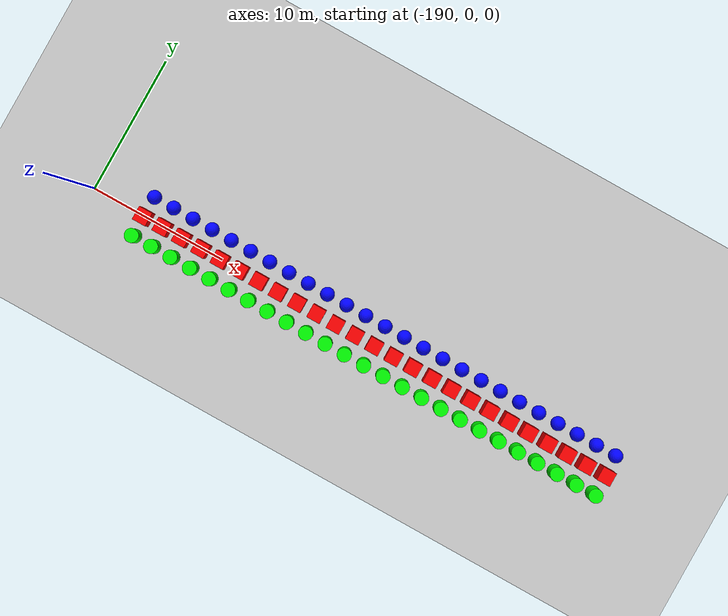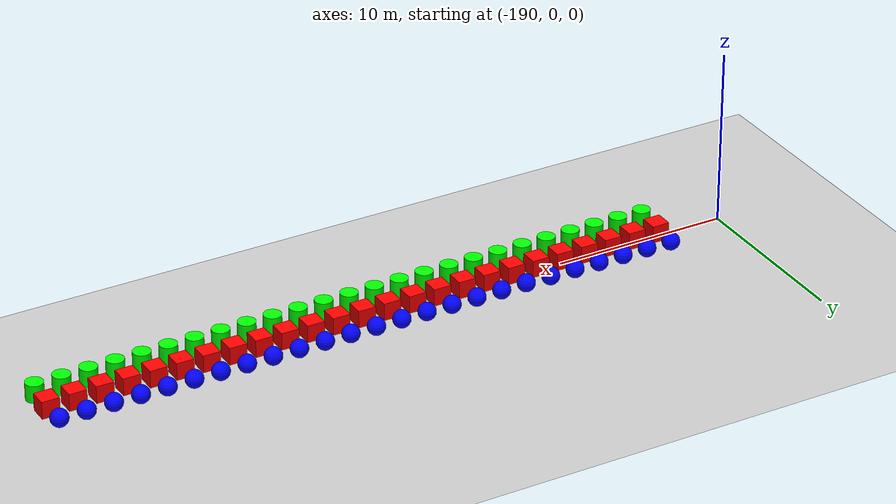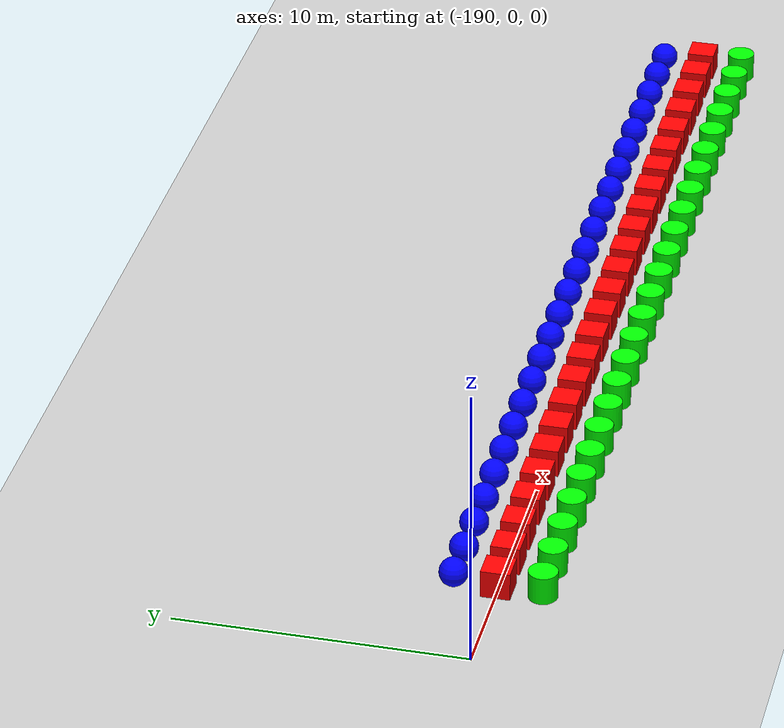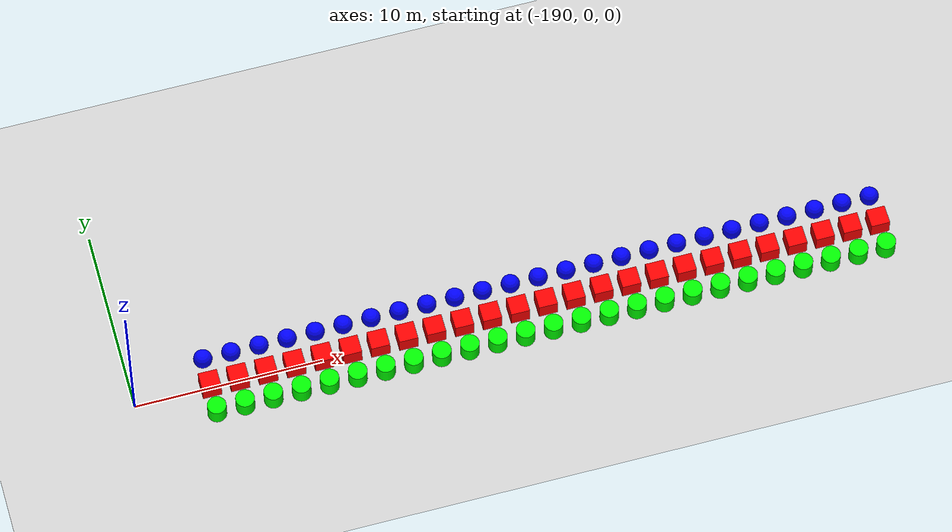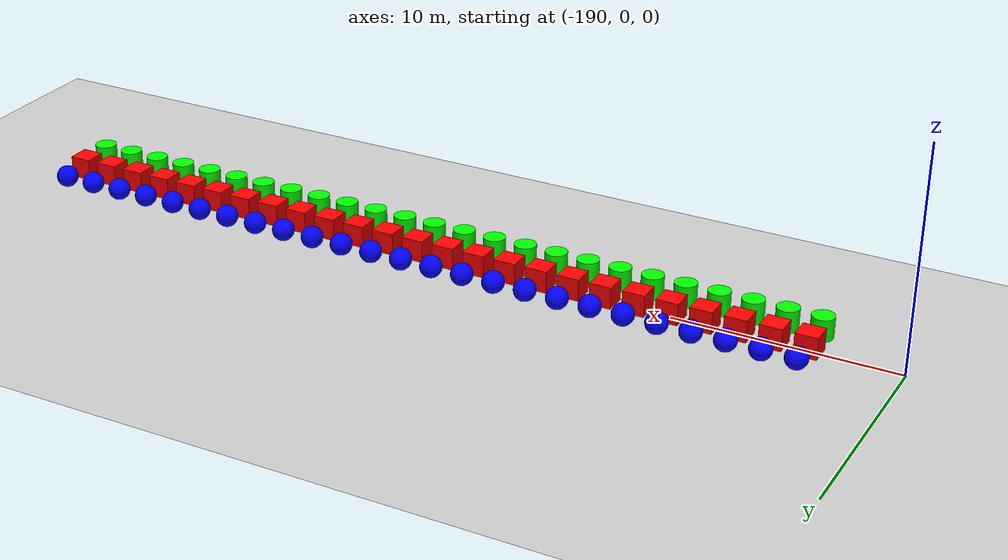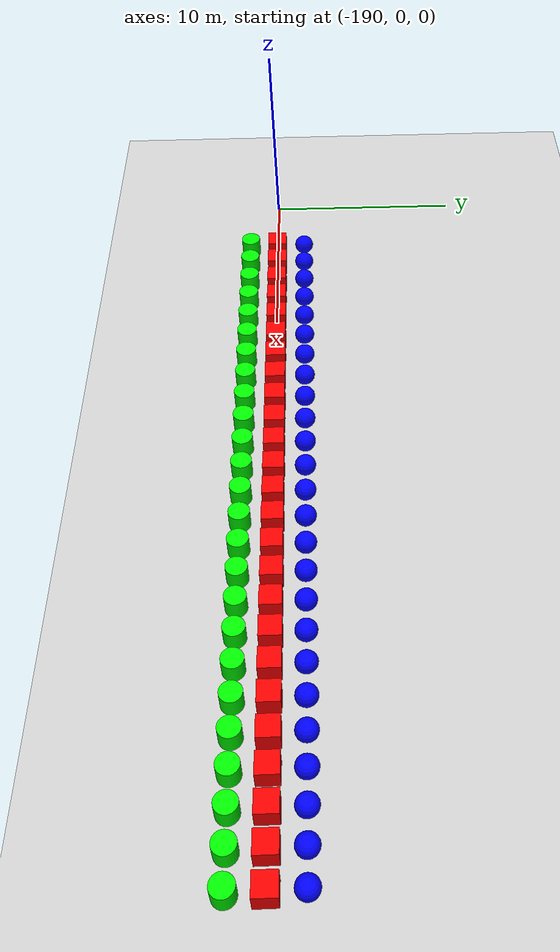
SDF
<sdf version="1.6">
 <world name="shapes">
  <model name="ground_plane">
   <static>true</static>
   <link name="link">
    <collision name="collision">
     <geometry><plane><normal>0 0 1</normal><size>100 100</size></plane></geometry>
    </collision>
    <visual name="visual">
     <geometry><plane><normal>0 0 1</normal><size>100 100</size></plane></geometry>
     <material>
      <ambient>0.8 0.8 0.8 1</ambient>
      <diffuse>0.8 0.8 0.8 1</diffuse>
      <specular>0.8 0.8 0.8 1</specular>
     </material>
    </visual>
   </link>
  </model>
  <model name="box_376">
   <static>false</static>
   <pose>-186.0 0 0.5 0 0 0</pose>
   <link name="box_link">
    <inertial>
     <inertia><ixx>1</ixx><ixy>0</ixy><ixz>0</ixz><iyy>1</iyy><iyz>0</iyz><izz>1</izz></inertia>
     <mass>1.0</mass>
    </inertial>
    <collision name="box_collision"><geometry><box><size>1 1 1</size></box></geometry></collision>
    <visual name="box_visual">
     <geometry><box><size>1 1 1</size></box></geometry>
     <material><ambient>1 0 0 1</ambient><diffuse>1 0 0 1</diffuse><specular>1 0 0 1</specular></material>
    </visual>
   </link>
  </model>
  <model name="cylinder_376">
   <static>false</static>
   <pose>-186.0 -1.5 0.5 0 0 0</pose>
   <link name="cylinder_link">
    <inertial>
     <inertia><ixx>2</ixx><ixy>0</ixy><ixz>0</ixz><iyy>2</iyy><iyz>0</iyz><izz>2</izz></inertia>
     <mass>2.0</mass>
    </inertial>
    <collision name="cylinder_collision">
     <geometry><cylinder><radius>0.5</radius><length>1.0</length></cylinder></geometry>
    </collision>
    <visual name="cylinder_visual">
     <geometry><cylinder><radius>0.5</radius><length>1.0</length></cylinder></geometry>
     <material><ambient>0 1 0 1</ambient><diffuse>0 1 0 1</diffuse><specular>0 1 0 1</specular></material>
    </visual>
   </link>
  </model>
  <model name="sphere_376">
   <static>false</static>
   <pose>-186.0 1.5 0.5 0 0 0</pose>
   <link name="sphere_link">
    <inertial>
     <inertia><ixx>3</ixx><ixy>0</ixy><ixz>0</ixz><iyy>3</iyy><iyz>0</iyz><izz>3</izz></inertia>
     <mass>3.0</mass>
    </inertial>
    <collision name="sphere_collision"><geometry><sphere><radius>0.5</radius></sphere></geometry></collision>
    <visual name="sphere_visual">
     <geometry><sphere><radius>0.5</radius></sphere></geometry>
     <material><ambient>0 0 1 1</ambient><diffuse>0 0 1 1</diffuse><specular>0 0 1 1</specular></material>
    </visual>
   </link>
  </model>
  <model name="box_377">
   <static>false</static>
   <pose>-184.5 0 0.5 0 0 0</pose>
   <link name="box_link">
    <inertial>
     <inertia><ixx>1</ixx><ixy>0</ixy><ixz>0</ixz><iyy>1</iyy><iyz>0</iyz><izz>1</izz></inertia>
     <mass>1.0</mass>
    </inertial>
    <collision name="box_collision"><geometry><box><size>1 1 1</size></box></geometry></collision>
    <visual name="box_visual">
     <geometry><box><size>1 1 1</size></box></geometry>
     <material><ambient>1 0 0 1</ambient><diffuse>1 0 0 1</diffuse><specular>1 0 0 1</specular></material>
    </visual>
   </link>
  </model>
  <model name="cylinder_377">
   <static>false</static>
   <pose>-184.5 -1.5 0.5 0 0 0</pose>
   <link name="cylinder_link">
    <inertial>
     <inertia><ixx>2</ixx><ixy>0</ixy><ixz>0</ixz><iyy>2</iyy><iyz>0</iyz><izz>2</izz></inertia>
     <mass>2.0</mass>
    </inertial>
    <collision name="cylinder_collision">
     <geometry><cylinder><radius>0.5</radius><length>1.0</length></cylinder></geometry>
    </collision>
    <visual name="cylinder_visual">
     <geometry><cylinder><radius>0.5</radius><length>1.0</length></cylinder></geometry>
     <material><ambient>0 1 0 1</ambient><diffuse>0 1 0 1</diffuse><specular>0 1 0 1</specular></material>
    </visual>
   </link>
  </model>
  <model name="sphere_377">
   <static>false</static>
   <pose>-184.5 1.5 0.5 0 0 0</pose>
   <link name="sphere_link">
    <inertial>
     <inertia><ixx>3</ixx><ixy>0</ixy><ixz>0</ixz><iyy>3</iyy><iyz>0</iyz><izz>3</izz></inertia>
     <mass>3.0</mass>
    </inertial>
    <collision name="sphere_collision"><geometry><sphere><radius>0.5</radius></sphere></geometry></collision>
    <visual name="sphere_visual">
     <geometry><sphere><radius>0.5</radius></sphere></geometry>
     <material><ambient>0 0 1 1</ambient><diffuse>0 0 1 1</diffuse><specular>0 0 1 1</specular></material>
    </visual>
   </link>
  </model>
  <model name="box_378">
   <static>false</static>
   <pose>-183.0 0 0.5 0 0 0</pose>
   <link name="box_link">
    <inertial>
     <inertia><ixx>1</ixx><ixy>0</ixy><ixz>0</ixz><iyy>1</iyy><iyz>0</iyz><izz>1</izz></inertia>
     <mass>1.0</mass>
    </inertial>
    <collision name="box_collision"><geometry><box><size>1 1 1</size></box></geometry></collision>
    <visual name="box_visual">
     <geometry><box><size>1 1 1</size></box></geometry>
     <material><ambient>1 0 0 1</ambient><diffuse>1 0 0 1</diffuse><specular>1 0 0 1</specular></material>
    </visual>
   </link>
  </model>
  <model name="cylinder_378">
   <static>false</static>
   <pose>-183.0 -1.5 0.5 0 0 0</pose>
   <link name="cylinder_link">
    <inertial>
     <inertia><ixx>2</ixx><ixy>0</ixy><ixz>0</ixz><iyy>2</iyy><iyz>0</iyz><izz>2</izz></inertia>
     <mass>2.0</mass>
    </inertial>
    <collision name="cylinder_collision">
     <geometry><cylinder><radius>0.5</radius><length>1.0</length></cylinder></geometry>
    </collision>
    <visual name="cylinder_visual">
     <geometry><cylinder><radius>0.5</radius><length>1.0</length></cylinder></geometry>
     <material><ambient>0 1 0 1</ambient><diffuse>0 1 0 1</diffuse><specular>0 1 0 1</specular></material>
    </visual>
   </link>
  </model>
  <model name="sphere_378">
   <static>false</static>
   <pose>-183.0 1.5 0.5 0 0 0</pose>
   <link name="sphere_link">
    <inertial>
     <inertia><ixx>3</ixx><ixy>0</ixy><ixz>0</ixz><iyy>3</iyy><iyz>0</iyz><izz>3</izz></inertia>
     <mass>3.0</mass>
    </inertial>
    <collision name="sphere_collision"><geometry><sphere><radius>0.5</radius></sphere></geometry></collision>
    <visual name="sphere_visual">
     <geometry><sphere><radius>0.5</radius></sphere></geometry>
     <material><ambient>0 0 1 1</ambient><diffuse>0 0 1 1</diffuse><specular>0 0 1 1</specular></material>
    </visual>
   </link>
  </model>
  <model name="box_379">
   <static>false</static>
   <pose>-181.5 0 0.5 0 0 0</pose>
   <link name="box_link">
    <inertial>
     <inertia><ixx>1</ixx><ixy>0</ixy><ixz>0</ixz><iyy>1</iyy><iyz>0</iyz><izz>1</izz></inertia>
     <mass>1.0</mass>
    </inertial>
    <collision name="box_collision"><geometry><box><size>1 1 1</size></box></geometry></collision>
    <visual name="box_visual">
     <geometry><box><size>1 1 1</size></box></geometry>
     <material><ambient>1 0 0 1</ambient><diffuse>1 0 0 1</diffuse><specular>1 0 0 1</specular></material>
    </visual>
   </link>
  </model>
  <model name="cylinder_379">
   <static>false</static>
   <pose>-181.5 -1.5 0.5 0 0 0</pose>
   <link name="cylinder_link">
    <inertial>
     <inertia><ixx>2</ixx><ixy>0</ixy><ixz>0</ixz><iyy>2</iyy><iyz>0</iyz><izz>2</izz></inertia>
     <mass>2.0</mass>
    </inertial>
    <collision name="cylinder_collision">
     <geometry><cylinder><radius>0.5</radius><length>1.0</length></cylinder></geometry>
    </collision>
    <visual name="cylinder_visual">
     <geometry><cylinder><radius>0.5</radius><length>1.0</length></cylinder></geometry>
     <material><ambient>0 1 0 1</ambient><diffuse>0 1 0 1</diffuse><specular>0 1 0 1</specular></material>
    </visual>
   </link>
  </model>
  <model name="sphere_379">
   <static>false</static>
   <pose>-181.5 1.5 0.5 0 0 0</pose>
   <link name="sphere_link">
    <inertial>
     <inertia><ixx>3</ixx><ixy>0</ixy><ixz>0</ixz><iyy>3</iyy><iyz>0</iyz><izz>3</izz></inertia>
     <mass>3.0</mass>
    </inertial>
    <collision name="sphere_collision"><geometry><sphere><radius>0.5</radius></sphere></geometry></collision>
    <visual name="sphere_visual">
     <geometry><sphere><radius>0.5</radius></sphere></geometry>
     <material><ambient>0 0 1 1</ambient><diffuse>0 0 1 1</diffuse><specular>0 0 1 1</specular></material>
    </visual>
   </link>
  </model>
  <model name="box_380">
   <static>false</static>
   <pose>-180.0 0 0.5 0 0 0</pose>
   <link name="box_link">
    <inertial>
     <inertia><ixx>1</ixx><ixy>0</ixy><ixz>0</ixz><iyy>1</iyy><iyz>0</iyz><izz>1</izz></inertia>
     <mass>1.0</mass>
    </inertial>
    <collision name="box_collision"><geometry><box><size>1 1 1</size></box></geometry></collision>
    <visual name="box_visual">
     <geometry><box><size>1 1 1</size></box></geometry>
     <material><ambient>1 0 0 1</ambient><diffuse>1 0 0 1</diffuse><specular>1 0 0 1</specular></material>
    </visual>
   </link>
  </model>
  <model name="cylinder_380">
   <static>false</static>
   <pose>-180.0 -1.5 0.5 0 0 0</pose>
   <link name="cylinder_link">
    <inertial>
     <inertia><ixx>2</ixx><ixy>0</ixy><ixz>0</ixz><iyy>2</iyy><iyz>0</iyz><izz>2</izz></inertia>
     <mass>2.0</mass>
    </inertial>
    <collision name="cylinder_collision">
     <geometry><cylinder><radius>0.5</radius><length>1.0</length></cylinder></geometry>
    </collision>
    <visual name="cylinder_visual">
     <geometry><cylinder><radius>0.5</radius><length>1.0</length></cylinder></geometry>
     <material><ambient>0 1 0 1</ambient><diffuse>0 1 0 1</diffuse><specular>0 1 0 1</specular></material>
    </visual>
   </link>
  </model>
  <model name="sphere_380">
   <static>false</static>
   <pose>-180.0 1.5 0.5 0 0 0</pose>
   <link name="sphere_link">
    <inertial>
     <inertia><ixx>3</ixx><ixy>0</ixy><ixz>0</ixz><iyy>3</iyy><iyz>0</iyz><izz>3</izz></inertia>
     <mass>3.0</mass>
    </inertial>
    <collision name="sphere_collision"><geometry><sphere><radius>0.5</radius></sphere></geometry></collision>
    <visual name="sphere_visual">
     <geometry><sphere><radius>0.5</radius></sphere></geometry>
     <material><ambient>0 0 1 1</ambient><diffuse>0 0 1 1</diffuse><specular>0 0 1 1</specular></material>
    </visual>
   </link>
  </model>
  <model name="box_381">
   <static>false</static>
   <pose>-178.5 0 0.5 0 0 0</pose>
   <link name="box_link">
    <inertial>
     <inertia><ixx>1</ixx><ixy>0</ixy><ixz>0</ixz><iyy>1</iyy><iyz>0</iyz><izz>1</izz></inertia>
     <mass>1.0</mass>
    </inertial>
    <collision name="box_collision"><geometry><box><size>1 1 1</size></box></geometry></collision>
    <visual name="box_visual">
     <geometry><box><size>1 1 1</size></box></geometry>
     <material><ambient>1 0 0 1</ambient><diffuse>1 0 0 1</diffuse><specular>1 0 0 1</specular></material>
    </visual>
   </link>
  </model>
  <model name="cylinder_381">
   <static>false</static>
   <pose>-178.5 -1.5 0.5 0 0 0</pose>
   <link name="cylinder_link">
    <inertial>
     <inertia><ixx>2</ixx><ixy>0</ixy><ixz>0</ixz><iyy>2</iyy><iyz>0</iyz><izz>2</izz></inertia>
     <mass>2.0</mass>
    </inertial>
    <collision name="cylinder_collision">
     <geometry><cylinder><radius>0.5</radius><length>1.0</length></cylinder></geometry>
    </collision>
    <visual name="cylinder_visual">
     <geometry><cylinder><radius>0.5</radius><length>1.0</length></cylinder></geometry>
     <material><ambient>0 1 0 1</ambient><diffuse>0 1 0 1</diffuse><specular>0 1 0 1</specular></material>
    </visual>
   </link>
  </model>
  <model name="sphere_381">
   <static>false</static>
   <pose>-178.5 1.5 0.5 0 0 0</pose>
   <link name="sphere_link">
    <inertial>
     <inertia><ixx>3</ixx><ixy>0</ixy><ixz>0</ixz><iyy>3</iyy><iyz>0</iyz><izz>3</izz></inertia>
     <mass>3.0</mass>
    </inertial>
    <collision name="sphere_collision"><geometry><sphere><radius>0.5</radius></sphere></geometry></collision>
    <visual name="sphere_visual">
     <geometry><sphere><radius>0.5</radius></sphere></geometry>
     <material><ambient>0 0 1 1</ambient><diffuse>0 0 1 1</diffuse><specular>0 0 1 1</specular></material>
    </visual>
   </link>
  </model>
  <model name="box_382">
   <static>false</static>
   <pose>-177.0 0 0.5 0 0 0</pose>
   <link name="box_link">
    <inertial>
     <inertia><ixx>1</ixx><ixy>0</ixy><ixz>0</ixz><iyy>1</iyy><iyz>0</iyz><izz>1</izz></inertia>
     <mass>1.0</mass>
    </inertial>
    <collision name="box_collision"><geometry><box><size>1 1 1</size></box></geometry></collision>
    <visual name="box_visual">
     <geometry><box><size>1 1 1</size></box></geometry>
     <material><ambient>1 0 0 1</ambient><diffuse>1 0 0 1</diffuse><specular>1 0 0 1</specular></material>
    </visual>
   </link>
  </model>
  <model name="cylinder_382">
   <static>false</static>
   <pose>-177.0 -1.5 0.5 0 0 0</pose>
   <link name="cylinder_link">
    <inertial>
     <inertia><ixx>2</ixx><ixy>0</ixy><ixz>0</ixz><iyy>2</iyy><iyz>0</iyz><izz>2</izz></inertia>
     <mass>2.0</mass>
    </inertial>
    <collision name="cylinder_collision">
     <geometry><cylinder><radius>0.5</radius><length>1.0</length></cylinder></geometry>
    </collision>
    <visual name="cylinder_visual">
     <geometry><cylinder><radius>0.5</radius><length>1.0</length></cylinder></geometry>
     <material><ambient>0 1 0 1</ambient><diffuse>0 1 0 1</diffuse><specular>0 1 0 1</specular></material>
    </visual>
   </link>
  </model>
  <model name="sphere_382">
   <static>false</static>
   <pose>-177.0 1.5 0.5 0 0 0</pose>
   <link name="sphere_link">
    <inertial>
     <inertia><ixx>3</ixx><ixy>0</ixy><ixz>0</ixz><iyy>3</iyy><iyz>0</iyz><izz>3</izz></inertia>
     <mass>3.0</mass>
    </inertial>
    <collision name="sphere_collision"><geometry><sphere><radius>0.5</radius></sphere></geometry></collision>
    <visual name="sphere_visual">
     <geometry><sphere><radius>0.5</radius></sphere></geometry>
     <material><ambient>0 0 1 1</ambient><diffuse>0 0 1 1</diffuse><specular>0 0 1 1</specular></material>
    </visual>
   </link>
  </model>
  <model name="box_383">
   <static>false</static>
   <pose>-175.5 0 0.5 0 0 0</pose>
   <link name="box_link">
    <inertial>
     <inertia><ixx>1</ixx><ixy>0</ixy><ixz>0</ixz><iyy>1</iyy><iyz>0</iyz><izz>1</izz></inertia>
     <mass>1.0</mass>
    </inertial>
    <collision name="box_collision"><geometry><box><size>1 1 1</size></box></geometry></collision>
    <visual name="box_visual">
     <geometry><box><size>1 1 1</size></box></geometry>
     <material><ambient>1 0 0 1</ambient><diffuse>1 0 0 1</diffuse><specular>1 0 0 1</specular></material>
    </visual>
   </link>
  </model>
  <model name="cylinder_383">
   <static>false</static>
   <pose>-175.5 -1.5 0.5 0 0 0</pose>
   <link name="cylinder_link">
    <inertial>
     <inertia><ixx>2</ixx><ixy>0</ixy><ixz>0</ixz><iyy>2</iyy><iyz>0</iyz><izz>2</izz></inertia>
     <mass>2.0</mass>
    </inertial>
    <collision name="cylinder_collision">
     <geometry><cylinder><radius>0.5</radius><length>1.0</length></cylinder></geometry>
    </collision>
    <visual name="cylinder_visual">
     <geometry><cylinder><radius>0.5</radius><length>1.0</length></cylinder></geometry>
     <material><ambient>0 1 0 1</ambient><diffuse>0 1 0 1</diffuse><specular>0 1 0 1</specular></material>
    </visual>
   </link>
  </model>
  <model name="sphere_383">
   <static>false</static>
   <pose>-175.5 1.5 0.5 0 0 0</pose>
   <link name="sphere_link">
    <inertial>
     <inertia><ixx>3</ixx><ixy>0</ixy><ixz>0</ixz><iyy>3</iyy><iyz>0</iyz><izz>3</izz></inertia>
     <mass>3.0</mass>
    </inertial>
    <collision name="sphere_collision"><geometry><sphere><radius>0.5</radius></sphere></geometry></collision>
    <visual name="sphere_visual">
     <geometry><sphere><radius>0.5</radius></sphere></geometry>
     <material><ambient>0 0 1 1</ambient><diffuse>0 0 1 1</diffuse><specular>0 0 1 1</specular></material>
    </visual>
   </link>
  </model>
  <model name="box_384">
   <static>false</static>
   <pose>-174.0 0 0.5 0 0 0</pose>
   <link name="box_link">
    <inertial>
     <inertia><ixx>1</ixx><ixy>0</ixy><ixz>0</ixz><iyy>1</iyy><iyz>0</iyz><izz>1</izz></inertia>
     <mass>1.0</mass>
    </inertial>
    <collision name="box_collision"><geometry><box><size>1 1 1</size></box></geometry></collision>
    <visual name="box_visual">
     <geometry><box><size>1 1 1</size></box></geometry>
     <material><ambient>1 0 0 1</ambient><diffuse>1 0 0 1</diffuse><specular>1 0 0 1</specular></material>
    </visual>
   </link>
  </model>
  <model name="cylinder_384">
   <static>false</static>
   <pose>-174.0 -1.5 0.5 0 0 0</pose>
   <link name="cylinder_link">
    <inertial>
     <inertia><ixx>2</ixx><ixy>0</ixy><ixz>0</ixz><iyy>2</iyy><iyz>0</iyz><izz>2</izz></inertia>
     <mass>2.0</mass>
    </inertial>
    <collision name="cylinder_collision">
     <geometry><cylinder><radius>0.5</radius><length>1.0</length></cylinder></geometry>
    </collision>
    <visual name="cylinder_visual">
     <geometry><cylinder><radius>0.5</radius><length>1.0</length></cylinder></geometry>
     <material><ambient>0 1 0 1</ambient><diffuse>0 1 0 1</diffuse><specular>0 1 0 1</specular></material>
    </visual>
   </link>
  </model>
  <model name="sphere_384">
   <static>false</static>
   <pose>-174.0 1.5 0.5 0 0 0</pose>
   <link name="sphere_link">
    <inertial>
     <inertia><ixx>3</ixx><ixy>0</ixy><ixz>0</ixz><iyy>3</iyy><iyz>0</iyz><izz>3</izz></inertia>
     <mass>3.0</mass>
    </inertial>
    <collision name="sphere_collision"><geometry><sphere><radius>0.5</radius></sphere></geometry></collision>
    <visual name="sphere_visual">
     <geometry><sphere><radius>0.5</radius></sphere></geometry>
     <material><ambient>0 0 1 1</ambient><diffuse>0 0 1 1</diffuse><specular>0 0 1 1</specular></material>
    </visual>
   </link>
  </model>
  <model name="box_385">
   <static>false</static>
   <pose>-172.5 0 0.5 0 0 0</pose>
   <link name="box_link">
    <inertial>
     <inertia><ixx>1</ixx><ixy>0</ixy><ixz>0</ixz><iyy>1</iyy><iyz>0</iyz><izz>1</izz></inertia>
     <mass>1.0</mass>
    </inertial>
    <collision name="box_collision"><geometry><box><size>1 1 1</size></box></geometry></collision>
    <visual name="box_visual">
     <geometry><box><size>1 1 1</size></box></geometry>
     <material><ambient>1 0 0 1</ambient><diffuse>1 0 0 1</diffuse><specular>1 0 0 1</specular></material>
    </visual>
   </link>
  </model>
  <model name="cylinder_385">
   <static>false</static>
   <pose>-172.5 -1.5 0.5 0 0 0</pose>
   <link name="cylinder_link">
    <inertial>
     <inertia><ixx>2</ixx><ixy>0</ixy><ixz>0</ixz><iyy>2</iyy><iyz>0</iyz><izz>2</izz></inertia>
     <mass>2.0</mass>
    </inertial>
    <collision name="cylinder_collision">
     <geometry><cylinder><radius>0.5</radius><length>1.0</length></cylinder></geometry>
    </collision>
    <visual name="cylinder_visual">
     <geometry><cylinder><radius>0.5</radius><length>1.0</length></cylinder></geometry>
     <material><ambient>0 1 0 1</ambient><diffuse>0 1 0 1</diffuse><specular>0 1 0 1</specular></material>
    </visual>
   </link>
  </model>
  <model name="sphere_385">
   <static>false</static>
   <pose>-172.5 1.5 0.5 0 0 0</pose>
   <link name="sphere_link">
    <inertial>
     <inertia><ixx>3</ixx><ixy>0</ixy><ixz>0</ixz><iyy>3</iyy><iyz>0</iyz><izz>3</izz></inertia>
     <mass>3.0</mass>
    </inertial>
    <collision name="sphere_collision"><geometry><sphere><radius>0.5</radius></sphere></geometry></collision>
    <visual name="sphere_visual">
     <geometry><sphere><radius>0.5</radius></sphere></geometry>
     <material><ambient>0 0 1 1</ambient><diffuse>0 0 1 1</diffuse><specular>0 0 1 1</specular></material>
    </visual>
   </link>
  </model>
  <model name="box_386">
   <static>false</static>
   <pose>-171.0 0 0.5 0 0 0</pose>
   <link name="box_link">
    <inertial>
     <inertia><ixx>1</ixx><ixy>0</ixy><ixz>0</ixz><iyy>1</iyy><iyz>0</iyz><izz>1</izz></inertia>
     <mass>1.0</mass>
    </inertial>
    <collision name="box_collision"><geometry><box><size>1 1 1</size></box></geometry></collision>
    <visual name="box_visual">
     <geometry><box><size>1 1 1</size></box></geometry>
     <material><ambient>1 0 0 1</ambient><diffuse>1 0 0 1</diffuse><specular>1 0 0 1</specular></material>
    </visual>
   </link>
  </model>
  <model name="cylinder_386">
   <static>false</static>
   <pose>-171.0 -1.5 0.5 0 0 0</pose>
   <link name="cylinder_link">
    <inertial>
     <inertia><ixx>2</ixx><ixy>0</ixy><ixz>0</ixz><iyy>2</iyy><iyz>0</iyz><izz>2</izz></inertia>
     <mass>2.0</mass>
    </inertial>
    <collision name="cylinder_collision">
     <geometry><cylinder><radius>0.5</radius><length>1.0</length></cylinder></geometry>
    </collision>
    <visual name="cylinder_visual">
     <geometry><cylinder><radius>0.5</radius><length>1.0</length></cylinder></geometry>
     <material><ambient>0 1 0 1</ambient><diffuse>0 1 0 1</diffuse><specular>0 1 0 1</specular></material>
    </visual>
   </link>
  </model>
  <model name="sphere_386">
   <static>false</static>
   <pose>-171.0 1.5 0.5 0 0 0</pose>
   <link name="sphere_link">
    <inertial>
     <inertia><ixx>3</ixx><ixy>0</ixy><ixz>0</ixz><iyy>3</iyy><iyz>0</iyz><izz>3</izz></inertia>
     <mass>3.0</mass>
    </inertial>
    <collision name="sphere_collision"><geometry><sphere><radius>0.5</radius></sphere></geometry></collision>
    <visual name="sphere_visual">
     <geometry><sphere><radius>0.5</radius></sphere></geometry>
     <material><ambient>0 0 1 1</ambient><diffuse>0 0 1 1</diffuse><specular>0 0 1 1</specular></material>
    </visual>
   </link>
  </model>
  <model name="box_387">
   <static>false</static>
   <pose>-169.5 0 0.5 0 0 0</pose>
   <link name="box_link">
    <inertial>
     <inertia><ixx>1</ixx><ixy>0</ixy><ixz>0</ixz><iyy>1</iyy><iyz>0</iyz><izz>1</izz></inertia>
     <mass>1.0</mass>
    </inertial>
    <collision name="box_collision"><geometry><box><size>1 1 1</size></box></geometry></collision>
    <visual name="box_visual">
     <geometry><box><size>1 1 1</size></box></geometry>
     <material><ambient>1 0 0 1</ambient><diffuse>1 0 0 1</diffuse><specular>1 0 0 1</specular></material>
    </visual>
   </link>
  </model>
  <model name="cylinder_387">
   <static>false</static>
   <pose>-169.5 -1.5 0.5 0 0 0</pose>
   <link name="cylinder_link">
    <inertial>
     <inertia><ixx>2</ixx><ixy>0</ixy><ixz>0</ixz><iyy>2</iyy><iyz>0</iyz><izz>2</izz></inertia>
     <mass>2.0</mass>
    </inertial>
    <collision name="cylinder_collision">
     <geometry><cylinder><radius>0.5</radius><length>1.0</length></cylinder></geometry>
    </collision>
    <visual name="cylinder_visual">
     <geometry><cylinder><radius>0.5</radius><length>1.0</length></cylinder></geometry>
     <material><ambient>0 1 0 1</ambient><diffuse>0 1 0 1</diffuse><specular>0 1 0 1</specular></material>
    </visual>
   </link>
  </model>
  <model name="sphere_387">
   <static>false</static>
   <pose>-169.5 1.5 0.5 0 0 0</pose>
   <link name="sphere_link">
    <inertial>
     <inertia><ixx>3</ixx><ixy>0</ixy><ixz>0</ixz><iyy>3</iyy><iyz>0</iyz><izz>3</izz></inertia>
     <mass>3.0</mass>
    </inertial>
    <collision name="sphere_collision"><geometry><sphere><radius>0.5</radius></sphere></geometry></collision>
    <visual name="sphere_visual">
     <geometry><sphere><radius>0.5</radius></sphere></geometry>
     <material><ambient>0 0 1 1</ambient><diffuse>0 0 1 1</diffuse><specular>0 0 1 1</specular></material>
    </visual>
   </link>
  </model>
  <model name="box_388">
   <static>false</static>
   <pose>-168.0 0 0.5 0 0 0</pose>
   <link name="box_link">
    <inertial>
     <inertia><ixx>1</ixx><ixy>0</ixy><ixz>0</ixz><iyy>1</iyy><iyz>0</iyz><izz>1</izz></inertia>
     <mass>1.0</mass>
    </inertial>
    <collision name="box_collision"><geometry><box><size>1 1 1</size></box></geometry></collision>
    <visual name="box_visual">
     <geometry><box><size>1 1 1</size></box></geometry>
     <material><ambient>1 0 0 1</ambient><diffuse>1 0 0 1</diffuse><specular>1 0 0 1</specular></material>
    </visual>
   </link>
  </model>
  <model name="cylinder_388">
   <static>false</static>
   <pose>-168.0 -1.5 0.5 0 0 0</pose>
   <link name="cylinder_link">
    <inertial>
     <inertia><ixx>2</ixx><ixy>0</ixy><ixz>0</ixz><iyy>2</iyy><iyz>0</iyz><izz>2</izz></inertia>
     <mass>2.0</mass>
    </inertial>
    <collision name="cylinder_collision">
     <geometry><cylinder><radius>0.5</radius><length>1.0</length></cylinder></geometry>
    </collision>
    <visual name="cylinder_visual">
     <geometry><cylinder><radius>0.5</radius><length>1.0</length></cylinder></geometry>
     <material><ambient>0 1 0 1</ambient><diffuse>0 1 0 1</diffuse><specular>0 1 0 1</specular></material>
    </visual>
   </link>
  </model>
  <model name="sphere_388">
   <static>false</static>
   <pose>-168.0 1.5 0.5 0 0 0</pose>
   <link name="sphere_link">
    <inertial>
     <inertia><ixx>3</ixx><ixy>0</ixy><ixz>0</ixz><iyy>3</iyy><iyz>0</iyz><izz>3</izz></inertia>
     <mass>3.0</mass>
    </inertial>
    <collision name="sphere_collision"><geometry><sphere><radius>0.5</radius></sphere></geometry></collision>
    <visual name="sphere_visual">
     <geometry><sphere><radius>0.5</radius></sphere></geometry>
     <material><ambient>0 0 1 1</ambient><diffuse>0 0 1 1</diffuse><specular>0 0 1 1</specular></material>
    </visual>
   </link>
  </model>
  <model name="box_389">
   <static>false</static>
   <pose>-166.5 0 0.5 0 0 0</pose>
   <link name="box_link">
    <inertial>
     <inertia><ixx>1</ixx><ixy>0</ixy><ixz>0</ixz><iyy>1</iyy><iyz>0</iyz><izz>1</izz></inertia>
     <mass>1.0</mass>
    </inertial>
    <collision name="box_collision"><geometry><box><size>1 1 1</size></box></geometry></collision>
    <visual name="box_visual">
     <geometry><box><size>1 1 1</size></box></geometry>
     <material><ambient>1 0 0 1</ambient><diffuse>1 0 0 1</diffuse><specular>1 0 0 1</specular></material>
    </visual>
   </link>
  </model>
  <model name="cylinder_389">
   <static>false</static>
   <pose>-166.5 -1.5 0.5 0 0 0</pose>
   <link name="cylinder_link">
    <inertial>
     <inertia><ixx>2</ixx><ixy>0</ixy><ixz>0</ixz><iyy>2</iyy><iyz>0</iyz><izz>2</izz></inertia>
     <mass>2.0</mass>
    </inertial>
    <collision name="cylinder_collision">
     <geometry><cylinder><radius>0.5</radius><length>1.0</length></cylinder></geometry>
    </collision>
    <visual name="cylinder_visual">
     <geometry><cylinder><radius>0.5</radius><length>1.0</length></cylinder></geometry>
     <material><ambient>0 1 0 1</ambient><diffuse>0 1 0 1</diffuse><specular>0 1 0 1</specular></material>
    </visual>
   </link>
  </model>
  <model name="sphere_389">
   <static>false</static>
   <pose>-166.5 1.5 0.5 0 0 0</pose>
   <link name="sphere_link">
    <inertial>
     <inertia><ixx>3</ixx><ixy>0</ixy><ixz>0</ixz><iyy>3</iyy><iyz>0</iyz><izz>3</izz></inertia>
     <mass>3.0</mass>
    </inertial>
    <collision name="sphere_collision"><geometry><sphere><radius>0.5</radius></sphere></geometry></collision>
    <visual name="sphere_visual">
     <geometry><sphere><radius>0.5</radius></sphere></geometry>
     <material><ambient>0 0 1 1</ambient><diffuse>0 0 1 1</diffuse><specular>0 0 1 1</specular></material>
    </visual>
   </link>
  </model>
  <model name="box_390">
   <static>false</static>
   <pose>-165.0 0 0.5 0 0 0</pose>
   <link name="box_link">
    <inertial>
     <inertia><ixx>1</ixx><ixy>0</ixy><ixz>0</ixz><iyy>1</iyy><iyz>0</iyz><izz>1</izz></inertia>
     <mass>1.0</mass>
    </inertial>
    <collision name="box_collision"><geometry><box><size>1 1 1</size></box></geometry></collision>
    <visual name="box_visual">
     <geometry><box><size>1 1 1</size></box></geometry>
     <material><ambient>1 0 0 1</ambient><diffuse>1 0 0 1</diffuse><specular>1 0 0 1</specular></material>
    </visual>
   </link>
  </model>
  <model name="cylinder_390">
   <static>false</static>
   <pose>-165.0 -1.5 0.5 0 0 0</pose>
   <link name="cylinder_link">
    <inertial>
     <inertia><ixx>2</ixx><ixy>0</ixy><ixz>0</ixz><iyy>2</iyy><iyz>0</iyz><izz>2</izz></inertia>
     <mass>2.0</mass>
    </inertial>
    <collision name="cylinder_collision">
     <geometry><cylinder><radius>0.5</radius><length>1.0</length></cylinder></geometry>
    </collision>
    <visual name="cylinder_visual">
     <geometry><cylinder><radius>0.5</radius><length>1.0</length></cylinder></geometry>
     <material><ambient>0 1 0 1</ambient><diffuse>0 1 0 1</diffuse><specular>0 1 0 1</specular></material>
    </visual>
   </link>
  </model>
  <model name="sphere_390">
   <static>false</static>
   <pose>-165.0 1.5 0.5 0 0 0</pose>
   <link name="sphere_link">
    <inertial>
     <inertia><ixx>3</ixx><ixy>0</ixy><ixz>0</ixz><iyy>3</iyy><iyz>0</iyz><izz>3</izz></inertia>
     <mass>3.0</mass>
    </inertial>
    <collision name="sphere_collision"><geometry><sphere><radius>0.5</radius></sphere></geometry></collision>
    <visual name="sphere_visual">
     <geometry><sphere><radius>0.5</radius></sphere></geometry>
     <material><ambient>0 0 1 1</ambient><diffuse>0 0 1 1</diffuse><specular>0 0 1 1</specular></material>
    </visual>
   </link>
  </model>
  <model name="box_391">
   <static>false</static>
   <pose>-163.5 0 0.5 0 0 0</pose>
   <link name="box_link">
    <inertial>
     <inertia><ixx>1</ixx><ixy>0</ixy><ixz>0</ixz><iyy>1</iyy><iyz>0</iyz><izz>1</izz></inertia>
     <mass>1.0</mass>
    </inertial>
    <collision name="box_collision"><geometry><box><size>1 1 1</size></box></geometry></collision>
    <visual name="box_visual">
     <geometry><box><size>1 1 1</size></box></geometry>
     <material><ambient>1 0 0 1</ambient><diffuse>1 0 0 1</diffuse><specular>1 0 0 1</specular></material>
    </visual>
   </link>
  </model>
  <model name="cylinder_391">
   <static>false</static>
   <pose>-163.5 -1.5 0.5 0 0 0</pose>
   <link name="cylinder_link">
    <inertial>
     <inertia><ixx>2</ixx><ixy>0</ixy><ixz>0</ixz><iyy>2</iyy><iyz>0</iyz><izz>2</izz></inertia>
     <mass>2.0</mass>
    </inertial>
    <collision name="cylinder_collision">
     <geometry><cylinder><radius>0.5</radius><length>1.0</length></cylinder></geometry>
    </collision>
    <visual name="cylinder_visual">
     <geometry><cylinder><radius>0.5</radius><length>1.0</length></cylinder></geometry>
     <material><ambient>0 1 0 1</ambient><diffuse>0 1 0 1</diffuse><specular>0 1 0 1</specular></material>
    </visual>
   </link>
  </model>
  <model name="sphere_391">
   <static>false</static>
   <pose>-163.5 1.5 0.5 0 0 0</pose>
   <link name="sphere_link">
    <inertial>
     <inertia><ixx>3</ixx><ixy>0</ixy><ixz>0</ixz><iyy>3</iyy><iyz>0</iyz><izz>3</izz></inertia>
     <mass>3.0</mass>
    </inertial>
    <collision name="sphere_collision"><geometry><sphere><radius>0.5</radius></sphere></geometry></collision>
    <visual name="sphere_visual">
     <geometry><sphere><radius>0.5</radius></sphere></geometry>
     <material><ambient>0 0 1 1</ambient><diffuse>0 0 1 1</diffuse><specular>0 0 1 1</specular></material>
    </visual>
   </link>
  </model>
  <model name="box_392">
   <static>false</static>
   <pose>-162.0 0 0.5 0 0 0</pose>
   <link name="box_link">
    <inertial>
     <inertia><ixx>1</ixx><ixy>0</ixy><ixz>0</ixz><iyy>1</iyy><iyz>0</iyz><izz>1</izz></inertia>
     <mass>1.0</mass>
    </inertial>
    <collision name="box_collision"><geometry><box><size>1 1 1</size></box></geometry></collision>
    <visual name="box_visual">
     <geometry><box><size>1 1 1</size></box></geometry>
     <material><ambient>1 0 0 1</ambient><diffuse>1 0 0 1</diffuse><specular>1 0 0 1</specular></material>
    </visual>
   </link>
  </model>
  <model name="cylinder_392">
   <static>false</static>
   <pose>-162.0 -1.5 0.5 0 0 0</pose>
   <link name="cylinder_link">
    <inertial>
     <inertia><ixx>2</ixx><ixy>0</ixy><ixz>0</ixz><iyy>2</iyy><iyz>0</iyz><izz>2</izz></inertia>
     <mass>2.0</mass>
    </inertial>
    <collision name="cylinder_collision">
     <geometry><cylinder><radius>0.5</radius><length>1.0</length></cylinder></geometry>
    </collision>
    <visual name="cylinder_visual">
     <geometry><cylinder><radius>0.5</radius><length>1.0</length></cylinder></geometry>
     <material><ambient>0 1 0 1</ambient><diffuse>0 1 0 1</diffuse><specular>0 1 0 1</specular></material>
    </visual>
   </link>
  </model>
  <model name="sphere_392">
   <static>false</static>
   <pose>-162.0 1.5 0.5 0 0 0</pose>
   <link name="sphere_link">
    <inertial>
     <inertia><ixx>3</ixx><ixy>0</ixy><ixz>0</ixz><iyy>3</iyy><iyz>0</iyz><izz>3</izz></inertia>
     <mass>3.0</mass>
    </inertial>
    <collision name="sphere_collision"><geometry><sphere><radius>0.5</radius></sphere></geometry></collision>
    <visual name="sphere_visual">
     <geometry><sphere><radius>0.5</radius></sphere></geometry>
     <material><ambient>0 0 1 1</ambient><diffuse>0 0 1 1</diffuse><specular>0 0 1 1</specular></material>
    </visual>
   </link>
  </model>
  <model name="box_393">
   <static>false</static>
   <pose>-160.5 0 0.5 0 0 0</pose>
   <link name="box_link">
    <inertial>
     <inertia><ixx>1</ixx><ixy>0</ixy><ixz>0</ixz><iyy>1</iyy><iyz>0</iyz><izz>1</izz></inertia>
     <mass>1.0</mass>
    </inertial>
    <collision name="box_collision"><geometry><box><size>1 1 1</size></box></geometry></collision>
    <visual name="box_visual">
     <geometry><box><size>1 1 1</size></box></geometry>
     <material><ambient>1 0 0 1</ambient><diffuse>1 0 0 1</diffuse><specular>1 0 0 1</specular></material>
    </visual>
   </link>
  </model>
  <model name="cylinder_393">
   <static>false</static>
   <pose>-160.5 -1.5 0.5 0 0 0</pose>
   <link name="cylinder_link">
    <inertial>
     <inertia><ixx>2</ixx><ixy>0</ixy><ixz>0</ixz><iyy>2</iyy><iyz>0</iyz><izz>2</izz></inertia>
     <mass>2.0</mass>
    </inertial>
    <collision name="cylinder_collision">
     <geometry><cylinder><radius>0.5</radius><length>1.0</length></cylinder></geometry>
    </collision>
    <visual name="cylinder_visual">
     <geometry><cylinder><radius>0.5</radius><length>1.0</length></cylinder></geometry>
     <material><ambient>0 1 0 1</ambient><diffuse>0 1 0 1</diffuse><specular>0 1 0 1</specular></material>
    </visual>
   </link>
  </model>
  <model name="sphere_393">
   <static>false</static>
   <pose>-160.5 1.5 0.5 0 0 0</pose>
   <link name="sphere_link">
    <inertial>
     <inertia><ixx>3</ixx><ixy>0</ixy><ixz>0</ixz><iyy>3</iyy><iyz>0</iyz><izz>3</izz></inertia>
     <mass>3.0</mass>
    </inertial>
    <collision name="sphere_collision"><geometry><sphere><radius>0.5</radius></sphere></geometry></collision>
    <visual name="sphere_visual">
     <geometry><sphere><radius>0.5</radius></sphere></geometry>
     <material><ambient>0 0 1 1</ambient><diffuse>0 0 1 1</diffuse><specular>0 0 1 1</specular></material>
    </visual>
   </link>
  </model>
  <model name="box_394">
   <static>false</static>
   <pose>-159.0 0 0.5 0 0 0</pose>
   <link name="box_link">
    <inertial>
     <inertia><ixx>1</ixx><ixy>0</ixy><ixz>0</ixz><iyy>1</iyy><iyz>0</iyz><izz>1</izz></inertia>
     <mass>1.0</mass>
    </inertial>
    <collision name="box_collision"><geometry><box><size>1 1 1</size></box></geometry></collision>
    <visual name="box_visual">
     <geometry><box><size>1 1 1</size></box></geometry>
     <material><ambient>1 0 0 1</ambient><diffuse>1 0 0 1</diffuse><specular>1 0 0 1</specular></material>
    </visual>
   </link>
  </model>
  <model name="cylinder_394">
   <static>false</static>
   <pose>-159.0 -1.5 0.5 0 0 0</pose>
   <link name="cylinder_link">
    <inertial>
     <inertia><ixx>2</ixx><ixy>0</ixy><ixz>0</ixz><iyy>2</iyy><iyz>0</iyz><izz>2</izz></inertia>
     <mass>2.0</mass>
    </inertial>
    <collision name="cylinder_collision">
     <geometry><cylinder><radius>0.5</radius><length>1.0</length></cylinder></geometry>
    </collision>
    <visual name="cylinder_visual">
     <geometry><cylinder><radius>0.5</radius><length>1.0</length></cylinder></geometry>
     <material><ambient>0 1 0 1</ambient><diffuse>0 1 0 1</diffuse><specular>0 1 0 1</specular></material>
    </visual>
   </link>
  </model>
  <model name="sphere_394">
   <static>false</static>
   <pose>-159.0 1.5 0.5 0 0 0</pose>
   <link name="sphere_link">
    <inertial>
     <inertia><ixx>3</ixx><ixy>0</ixy><ixz>0</ixz><iyy>3</iyy><iyz>0</iyz><izz>3</izz></inertia>
     <mass>3.0</mass>
    </inertial>
    <collision name="sphere_collision"><geometry><sphere><radius>0.5</radius></sphere></geometry></collision>
    <visual name="sphere_visual">
     <geometry><sphere><radius>0.5</radius></sphere></geometry>
     <material><ambient>0 0 1 1</ambient><diffuse>0 0 1 1</diffuse><specular>0 0 1 1</specular></material>
    </visual>
   </link>
  </model>
  <model name="box_395">
   <static>false</static>
   <pose>-157.5 0 0.5 0 0 0</pose>
   <link name="box_link">
    <inertial>
     <inertia><ixx>1</ixx><ixy>0</ixy><ixz>0</ixz><iyy>1</iyy><iyz>0</iyz><izz>1</izz></inertia>
     <mass>1.0</mass>
    </inertial>
    <collision name="box_collision"><geometry><box><size>1 1 1</size></box></geometry></collision>
    <visual name="box_visual">
     <geometry><box><size>1 1 1</size></box></geometry>
     <material><ambient>1 0 0 1</ambient><diffuse>1 0 0 1</diffuse><specular>1 0 0 1</specular></material>
    </visual>
   </link>
  </model>
  <model name="cylinder_395">
   <static>false</static>
   <pose>-157.5 -1.5 0.5 0 0 0</pose>
   <link name="cylinder_link">
    <inertial>
     <inertia><ixx>2</ixx><ixy>0</ixy><ixz>0</ixz><iyy>2</iyy><iyz>0</iyz><izz>2</izz></inertia>
     <mass>2.0</mass>
    </inertial>
    <collision name="cylinder_collision">
     <geometry><cylinder><radius>0.5</radius><length>1.0</length></cylinder></geometry>
    </collision>
    <visual name="cylinder_visual">
     <geometry><cylinder><radius>0.5</radius><length>1.0</length></cylinder></geometry>
     <material><ambient>0 1 0 1</ambient><diffuse>0 1 0 1</diffuse><specular>0 1 0 1</specular></material>
    </visual>
   </link>
  </model>
  <model name="sphere_395">
   <static>false</static>
   <pose>-157.5 1.5 0.5 0 0 0</pose>
   <link name="sphere_link">
    <inertial>
     <inertia><ixx>3</ixx><ixy>0</ixy><ixz>0</ixz><iyy>3</iyy><iyz>0</iyz><izz>3</izz></inertia>
     <mass>3.0</mass>
    </inertial>
    <collision name="sphere_collision"><geometry><sphere><radius>0.5</radius></sphere></geometry></collision>
    <visual name="sphere_visual">
     <geometry><sphere><radius>0.5</radius></sphere></geometry>
     <material><ambient>0 0 1 1</ambient><diffuse>0 0 1 1</diffuse><specular>0 0 1 1</specular></material>
    </visual>
   </link>
  </model>
  <model name="box_396">
   <static>false</static>
   <pose>-156.0 0 0.5 0 0 0</pose>
   <link name="box_link">
    <inertial>
     <inertia><ixx>1</ixx><ixy>0</ixy><ixz>0</ixz><iyy>1</iyy><iyz>0</iyz><izz>1</izz></inertia>
     <mass>1.0</mass>
    </inertial>
    <collision name="box_collision"><geometry><box><size>1 1 1</size></box></geometry></collision>
    <visual name="box_visual">
     <geometry><box><size>1 1 1</size></box></geometry>
     <material><ambient>1 0 0 1</ambient><diffuse>1 0 0 1</diffuse><specular>1 0 0 1</specular></material>
    </visual>
   </link>
  </model>
  <model name="cylinder_396">
   <static>false</static>
   <pose>-156.0 -1.5 0.5 0 0 0</pose>
   <link name="cylinder_link">
    <inertial>
     <inertia><ixx>2</ixx><ixy>0</ixy><ixz>0</ixz><iyy>2</iyy><iyz>0</iyz><izz>2</izz></inertia>
     <mass>2.0</mass>
    </inertial>
    <collision name="cylinder_collision">
     <geometry><cylinder><radius>0.5</radius><length>1.0</length></cylinder></geometry>
    </collision>
    <visual name="cylinder_visual">
     <geometry><cylinder><radius>0.5</radius><length>1.0</length></cylinder></geometry>
     <material><ambient>0 1 0 1</ambient><diffuse>0 1 0 1</diffuse><specular>0 1 0 1</specular></material>
    </visual>
   </link>
  </model>
  <model name="sphere_396">
   <static>false</static>
   <pose>-156.0 1.5 0.5 0 0 0</pose>
   <link name="sphere_link">
    <inertial>
     <inertia><ixx>3</ixx><ixy>0</ixy><ixz>0</ixz><iyy>3</iyy><iyz>0</iyz><izz>3</izz></inertia>
     <mass>3.0</mass>
    </inertial>
    <collision name="sphere_collision"><geometry><sphere><radius>0.5</radius></sphere></geometry></collision>
    <visual name="sphere_visual">
     <geometry><sphere><radius>0.5</radius></sphere></geometry>
     <material><ambient>0 0 1 1</ambient><diffuse>0 0 1 1</diffuse><specular>0 0 1 1</specular></material>
    </visual>
   </link>
  </model>
  <model name="box_397">
   <static>false</static>
   <pose>-154.5 0 0.5 0 0 0</pose>
   <link name="box_link">
    <inertial>
     <inertia><ixx>1</ixx><ixy>0</ixy><ixz>0</ixz><iyy>1</iyy><iyz>0</iyz><izz>1</izz></inertia>
     <mass>1.0</mass>
    </inertial>
    <collision name="box_collision"><geometry><box><size>1 1 1</size></box></geometry></collision>
    <visual name="box_visual">
     <geometry><box><size>1 1 1</size></box></geometry>
     <material><ambient>1 0 0 1</ambient><diffuse>1 0 0 1</diffuse><specular>1 0 0 1</specular></material>
    </visual>
   </link>
  </model>
  <model name="cylinder_397">
   <static>false</static>
   <pose>-154.5 -1.5 0.5 0 0 0</pose>
   <link name="cylinder_link">
    <inertial>
     <inertia><ixx>2</ixx><ixy>0</ixy><ixz>0</ixz><iyy>2</iyy><iyz>0</iyz><izz>2</izz></inertia>
     <mass>2.0</mass>
    </inertial>
    <collision name="cylinder_collision">
     <geometry><cylinder><radius>0.5</radius><length>1.0</length></cylinder></geometry>
    </collision>
    <visual name="cylinder_visual">
     <geometry><cylinder><radius>0.5</radius><length>1.0</length></cylinder></geometry>
     <material><ambient>0 1 0 1</ambient><diffuse>0 1 0 1</diffuse><specular>0 1 0 1</specular></material>
    </visual>
   </link>
  </model>
  <model name="sphere_397">
   <static>false</static>
   <pose>-154.5 1.5 0.5 0 0 0</pose>
   <link name="sphere_link">
    <inertial>
     <inertia><ixx>3</ixx><ixy>0</ixy><ixz>0</ixz><iyy>3</iyy><iyz>0</iyz><izz>3</izz></inertia>
     <mass>3.0</mass>
    </inertial>
    <collision name="sphere_collision"><geometry><sphere><radius>0.5</radius></sphere></geometry></collision>
    <visual name="sphere_visual">
     <geometry><sphere><radius>0.5</radius></sphere></geometry>
     <material><ambient>0 0 1 1</ambient><diffuse>0 0 1 1</diffuse><specular>0 0 1 1</specular></material>
    </visual>
   </link>
  </model>
  <model name="box_398">
   <static>false</static>
   <pose>-153.0 0 0.5 0 0 0</pose>
   <link name="box_link">
    <inertial>
     <inertia><ixx>1</ixx><ixy>0</ixy><ixz>0</ixz><iyy>1</iyy><iyz>0</iyz><izz>1</izz></inertia>
     <mass>1.0</mass>
    </inertial>
    <collision name="box_collision"><geometry><box><size>1 1 1</size></box></geometry></collision>
    <visual name="box_visual">
     <geometry><box><size>1 1 1</size></box></geometry>
     <material><ambient>1 0 0 1</ambient><diffuse>1 0 0 1</diffuse><specular>1 0 0 1</specular></material>
    </visual>
   </link>
  </model>
  <model name="cylinder_398">
   <static>false</static>
   <pose>-153.0 -1.5 0.5 0 0 0</pose>
   <link name="cylinder_link">
    <inertial>
     <inertia><ixx>2</ixx><ixy>0</ixy><ixz>0</ixz><iyy>2</iyy><iyz>0</iyz><izz>2</izz></inertia>
     <mass>2.0</mass>
    </inertial>
    <collision name="cylinder_collision">
     <geometry><cylinder><radius>0.5</radius><length>1.0</length></cylinder></geometry>
    </collision>
    <visual name="cylinder_visual">
     <geometry><cylinder><radius>0.5</radius><length>1.0</length></cylinder></geometry>
     <material><ambient>0 1 0 1</ambient><diffuse>0 1 0 1</diffuse><specular>0 1 0 1</specular></material>
    </visual>
   </link>
  </model>
  <model name="sphere_398">
   <static>false</static>
   <pose>-153.0 1.5 0.5 0 0 0</pose>
   <link name="sphere_link">
    <inertial>
     <inertia><ixx>3</ixx><ixy>0</ixy><ixz>0</ixz><iyy>3</iyy><iyz>0</iyz><izz>3</izz></inertia>
     <mass>3.0</mass>
    </inertial>
    <collision name="sphere_collision"><geometry><sphere><radius>0.5</radius></sphere></geometry></collision>
    <visual name="sphere_visual">
     <geometry><sphere><radius>0.5</radius></sphere></geometry>
     <material><ambient>0 0 1 1</ambient><diffuse>0 0 1 1</diffuse><specular>0 0 1 1</specular></material>
    </visual>
   </link>
  </model>
  <model name="box_399">
   <static>false</static>
   <pose>-151.5 0 0.5 0 0 0</pose>
   <link name="box_link">
    <inertial>
     <inertia><ixx>1</ixx><ixy>0</ixy><ixz>0</ixz><iyy>1</iyy><iyz>0</iyz><izz>1</izz></inertia>
     <mass>1.0</mass>
    </inertial>
    <collision name="box_collision"><geometry><box><size>1 1 1</size></box></geometry></collision>
    <visual name="box_visual">
     <geometry><box><size>1 1 1</size></box></geometry>
     <material><ambient>1 0 0 1</ambient><diffuse>1 0 0 1</diffuse><specular>1 0 0 1</specular></material>
    </visual>
   </link>
  </model>
  <model name="cylinder_399">
   <static>false</static>
   <pose>-151.5 -1.5 0.5 0 0 0</pose>
   <link name="cylinder_link">
    <inertial>
     <inertia><ixx>2</ixx><ixy>0</ixy><ixz>0</ixz><iyy>2</iyy><iyz>0</iyz><izz>2</izz></inertia>
     <mass>2.0</mass>
    </inertial>
    <collision name="cylinder_collision">
     <geometry><cylinder><radius>0.5</radius><length>1.0</length></cylinder></geometry>
    </collision>
    <visual name="cylinder_visual">
     <geometry><cylinder><radius>0.5</radius><length>1.0</length></cylinder></geometry>
     <material><ambient>0 1 0 1</ambient><diffuse>0 1 0 1</diffuse><specular>0 1 0 1</specular></material>
    </visual>
   </link>
  </model>
  <model name="sphere_399">
   <static>false</static>
   <pose>-151.5 1.5 0.5 0 0 0</pose>
   <link name="sphere_link">
    <inertial>
     <inertia><ixx>3</ixx><ixy>0</ixy><ixz>0</ixz><iyy>3</iyy><iyz>0</iyz><izz>3</izz></inertia>
     <mass>3.0</mass>
    </inertial>
    <collision name="sphere_collision"><geometry><sphere><radius>0.5</radius></sphere></geometry></collision>
    <visual name="sphere_visual">
     <geometry><sphere><radius>0.5</radius></sphere></geometry>
     <material><ambient>0 0 1 1</ambient><diffuse>0 0 1 1</diffuse><specular>0 0 1 1</specular></material>
    </visual>
   </link>
  </model>
  <model name="box_400">
   <static>false</static>
   <pose>-150.0 0 0.5 0 0 0</pose>
   <link name="box_link">
    <inertial>
     <inertia><ixx>1</ixx><ixy>0</ixy><ixz>0</ixz><iyy>1</iyy><iyz>0</iyz><izz>1</izz></inertia>
     <mass>1.0</mass>
    </inertial>
    <collision name="box_collision"><geometry><box><size>1 1 1</size></box></geometry></collision>
    <visual name="box_visual">
     <geometry><box><size>1 1 1</size></box></geometry>
     <material><ambient>1 0 0 1</ambient><diffuse>1 0 0 1</diffuse><specular>1 0 0 1</specular></material>
    </visual>
   </link>
  </model>
  <model name="cylinder_400">
   <static>false</static>
   <pose>-150.0 -1.5 0.5 0 0 0</pose>
   <link name="cylinder_link">
    <inertial>
     <inertia><ixx>2</ixx><ixy>0</ixy><ixz>0</ixz><iyy>2</iyy><iyz>0</iyz><izz>2</izz></inertia>
     <mass>2.0</mass>
    </inertial>
    <collision name="cylinder_collision">
     <geometry><cylinder><radius>0.5</radius><length>1.0</length></cylinder></geometry>
    </collision>
    <visual name="cylinder_visual">
     <geometry><cylinder><radius>0.5</radius><length>1.0</length></cylinder></geometry>
     <material><ambient>0 1 0 1</ambient><diffuse>0 1 0 1</diffuse><specular>0 1 0 1</specular></material>
    </visual>
   </link>
  </model>
  <model name="sphere_400">
   <static>false</static>
   <pose>-150.0 1.5 0.5 0 0 0</pose>
   <link name="sphere_link">
    <inertial>
     <inertia><ixx>3</ixx><ixy>0</ixy><ixz>0</ixz><iyy>3</iyy><iyz>0</iyz><izz>3</izz></inertia>
     <mass>3.0</mass>
    </inertial>
    <collision name="sphere_collision"><geometry><sphere><radius>0.5</radius></sphere></geometry></collision>
    <visual name="sphere_visual">
     <geometry><sphere><radius>0.5</radius></sphere></geometry>
     <material><ambient>0 0 1 1</ambient><diffuse>0 0 1 1</diffuse><specular>0 0 1 1</specular></material>
    </visual>
   </link>
  </model>
 </world>
</sdf>
